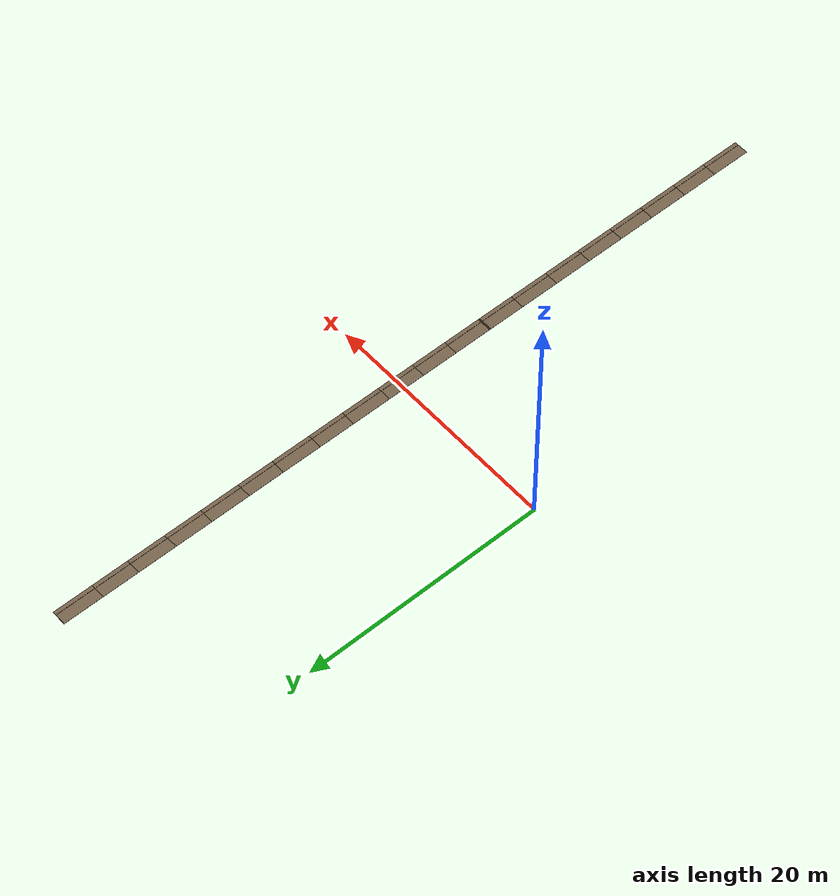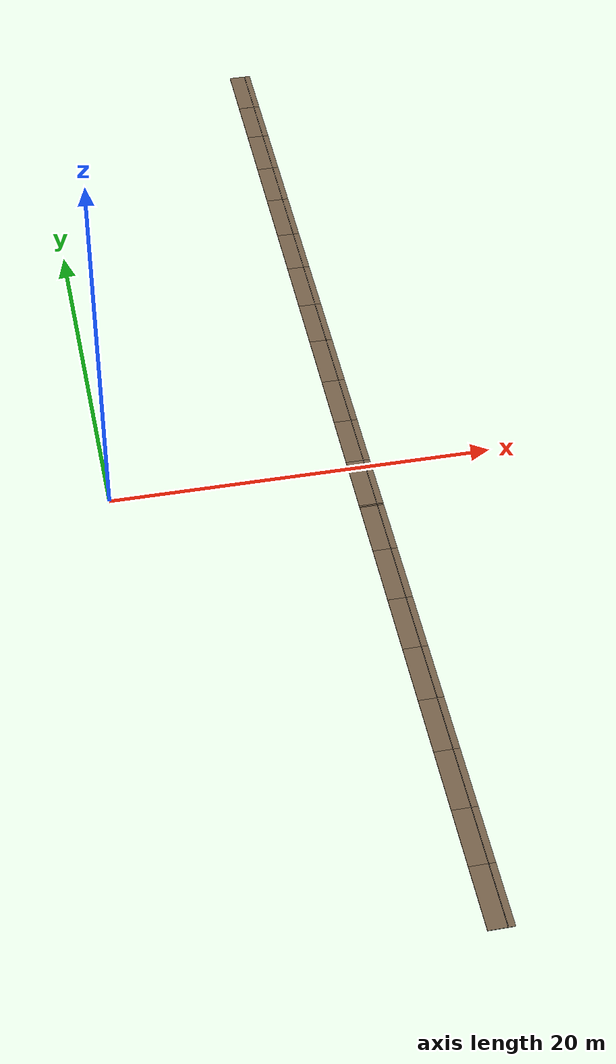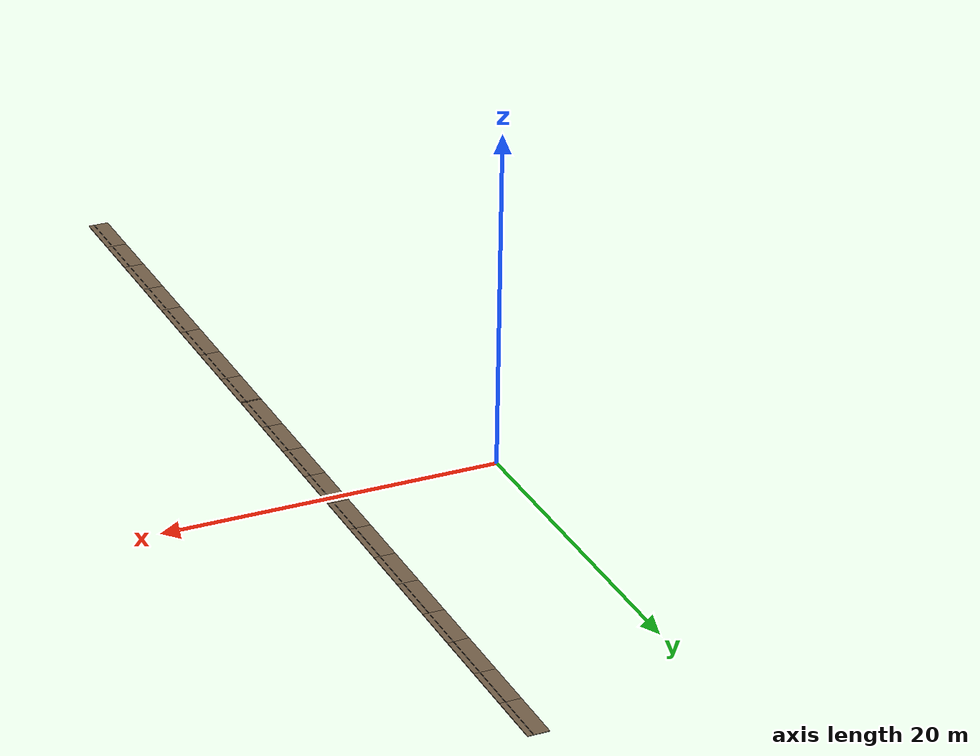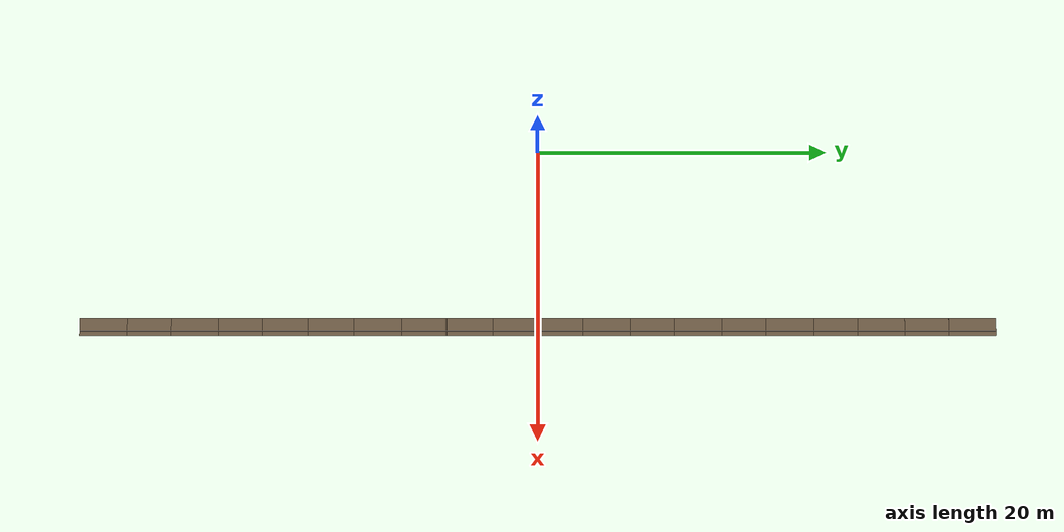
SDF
<sdf version="1.9">
 <world name="orchard_10x41">
  <model name="understory_r8">
   <static>true</static>
   <link name="link">
    <visual name="soil_1">
     <pose>12.250 -29.450 3.502 -0.0000 0.0000 0.0000</pose>
     <geometry><box><size>1.2000 3.2240 0.0300</size></box></geometry>
     <material>
      <ambient>0.400 0.330 0.250 1</ambient>
      <diffuse>0.440 0.363 0.275 1</diffuse>
      <specular>0.120 0.099 0.075 1</specular>
     </material>
     <plugin filename="gz-sim-label-system" name="gz::sim::systems::Label"><label>66</label></plugin>
    </visual>
    <visual name="soil_2">
     <pose>12.250 -26.350 3.502 0.0002 0.0000 0.0000</pose>
     <geometry><box><size>1.2000 3.2240 0.0300</size></box></geometry>
     <material>
      <ambient>0.400 0.330 0.250 1</ambient>
      <diffuse>0.440 0.363 0.275 1</diffuse>
      <specular>0.120 0.099 0.075 1</specular>
     </material>
     <plugin filename="gz-sim-label-system" name="gz::sim::systems::Label"><label>66</label></plugin>
    </visual>
    <visual name="soil_3">
     <pose>12.250 -23.250 3.503 0.0002 0.0000 0.0000</pose>
     <geometry><box><size>1.2000 3.2240 0.0300</size></box></geometry>
     <material>
      <ambient>0.400 0.330 0.250 1</ambient>
      <diffuse>0.440 0.363 0.275 1</diffuse>
      <specular>0.120 0.099 0.075 1</specular>
     </material>
     <plugin filename="gz-sim-label-system" name="gz::sim::systems::Label"><label>66</label></plugin>
    </visual>
    <visual name="soil_4">
     <pose>12.250 -20.150 3.503 0.0001 0.0000 0.0000</pose>
     <geometry><box><size>1.2000 3.2240 0.0300</size></box></geometry>
     <material>
      <ambient>0.400 0.330 0.250 1</ambient>
      <diffuse>0.440 0.363 0.275 1</diffuse>
      <specular>0.120 0.099 0.075 1</specular>
     </material>
     <plugin filename="gz-sim-label-system" name="gz::sim::systems::Label"><label>66</label></plugin>
    </visual>
    <visual name="soil_5">
     <pose>12.250 -17.050 3.504 0.0003 0.0000 0.0000</pose>
     <geometry><box><size>1.2000 3.2240 0.0300</size></box></geometry>
     <material>
      <ambient>0.400 0.330 0.250 1</ambient>
      <diffuse>0.440 0.363 0.275 1</diffuse>
      <specular>0.120 0.099 0.075 1</specular>
     </material>
     <plugin filename="gz-sim-label-system" name="gz::sim::systems::Label"><label>66</label></plugin>
    </visual>
    <visual name="soil_6">
     <pose>12.250 -13.950 3.505 0.0003 0.0000 0.0000</pose>
     <geometry><box><size>1.2000 3.2240 0.0300</size></box></geometry>
     <material>
      <ambient>0.400 0.330 0.250 1</ambient>
      <diffuse>0.440 0.363 0.275 1</diffuse>
      <specular>0.120 0.099 0.075 1</specular>
     </material>
     <plugin filename="gz-sim-label-system" name="gz::sim::systems::Label"><label>66</label></plugin>
    </visual>
    <visual name="soil_7">
     <pose>12.250 -10.850 3.506 0.0001 0.0000 0.0000</pose>
     <geometry><box><size>1.2000 3.2240 0.0300</size></box></geometry>
     <material>
      <ambient>0.400 0.330 0.250 1</ambient>
      <diffuse>0.440 0.363 0.275 1</diffuse>
      <specular>0.120 0.099 0.075 1</specular>
     </material>
     <plugin filename="gz-sim-label-system" name="gz::sim::systems::Label"><label>66</label></plugin>
    </visual>
    <visual name="soil_8">
     <pose>12.250 -7.750 3.506 0.0002 0.0000 0.0000</pose>
     <geometry><box><size>1.2000 3.2240 0.0300</size></box></geometry>
     <material>
      <ambient>0.400 0.330 0.250 1</ambient>
      <diffuse>0.440 0.363 0.275 1</diffuse>
      <specular>0.120 0.099 0.075 1</specular>
     </material>
     <plugin filename="gz-sim-label-system" name="gz::sim::systems::Label"><label>66</label></plugin>
    </visual>
    <visual name="soil_9">
     <pose>12.250 -4.650 3.506 -0.0002 0.0000 0.0000</pose>
     <geometry><box><size>1.2000 3.2240 0.0300</size></box></geometry>
     <material>
      <ambient>0.400 0.330 0.250 1</ambient>
      <diffuse>0.440 0.363 0.275 1</diffuse>
      <specular>0.120 0.099 0.075 1</specular>
     </material>
     <plugin filename="gz-sim-label-system" name="gz::sim::systems::Label"><label>66</label></plugin>
    </visual>
    <visual name="soil_10">
     <pose>12.250 -1.550 3.505 -0.0003 0.0000 0.0000</pose>
     <geometry><box><size>1.2000 3.2240 0.0300</size></box></geometry>
     <material>
      <ambient>0.400 0.330 0.250 1</ambient>
      <diffuse>0.440 0.363 0.275 1</diffuse>
      <specular>0.120 0.099 0.075 1</specular>
     </material>
     <plugin filename="gz-sim-label-system" name="gz::sim::systems::Label"><label>66</label></plugin>
    </visual>
    <visual name="soil_11">
     <pose>12.250 1.550 3.505 0.0002 0.0000 0.0000</pose>
     <geometry><box><size>1.2000 3.2240 0.0300</size></box></geometry>
     <material>
      <ambient>0.400 0.330 0.250 1</ambient>
      <diffuse>0.440 0.363 0.275 1</diffuse>
      <specular>0.120 0.099 0.075 1</specular>
     </material>
     <plugin filename="gz-sim-label-system" name="gz::sim::systems::Label"><label>66</label></plugin>
    </visual>
    <visual name="soil_12">
     <pose>12.250 4.650 3.506 0.0003 0.0000 0.0000</pose>
     <geometry><box><size>1.2000 3.2240 0.0300</size></box></geometry>
     <material>
      <ambient>0.400 0.330 0.250 1</ambient>
      <diffuse>0.440 0.363 0.275 1</diffuse>
      <specular>0.120 0.099 0.075 1</specular>
     </material>
     <plugin filename="gz-sim-label-system" name="gz::sim::systems::Label"><label>66</label></plugin>
    </visual>
    <visual name="soil_13">
     <pose>12.250 7.750 3.507 0.0004 0.0000 0.0000</pose>
     <geometry><box><size>1.2000 3.2240 0.0300</size></box></geometry>
     <material>
      <ambient>0.400 0.330 0.250 1</ambient>
      <diffuse>0.440 0.363 0.275 1</diffuse>
      <specular>0.120 0.099 0.075 1</specular>
     </material>
     <plugin filename="gz-sim-label-system" name="gz::sim::systems::Label"><label>66</label></plugin>
    </visual>
    <visual name="soil_14">
     <pose>12.250 10.850 3.508 0.0002 0.0000 0.0000</pose>
     <geometry><box><size>1.2000 3.2240 0.0300</size></box></geometry>
     <material>
      <ambient>0.400 0.330 0.250 1</ambient>
      <diffuse>0.440 0.363 0.275 1</diffuse>
      <specular>0.120 0.099 0.075 1</specular>
     </material>
     <plugin filename="gz-sim-label-system" name="gz::sim::systems::Label"><label>66</label></plugin>
    </visual>
    <visual name="soil_15">
     <pose>12.250 13.950 3.508 0.0000 0.0000 0.0000</pose>
     <geometry><box><size>1.2000 3.2240 0.0300</size></box></geometry>
     <material>
      <ambient>0.400 0.330 0.250 1</ambient>
      <diffuse>0.440 0.363 0.275 1</diffuse>
      <specular>0.120 0.099 0.075 1</specular>
     </material>
     <plugin filename="gz-sim-label-system" name="gz::sim::systems::Label"><label>66</label></plugin>
    </visual>
    <visual name="soil_16">
     <pose>12.250 17.050 3.508 -0.0005 0.0000 0.0000</pose>
     <geometry><box><size>1.2000 3.2240 0.0300</size></box></geometry>
     <material>
      <ambient>0.400 0.330 0.250 1</ambient>
      <diffuse>0.440 0.363 0.275 1</diffuse>
      <specular>0.120 0.099 0.075 1</specular>
     </material>
     <plugin filename="gz-sim-label-system" name="gz::sim::systems::Label"><label>66</label></plugin>
    </visual>
    <visual name="soil_17">
     <pose>12.250 20.150 3.507 -0.0001 0.0000 0.0000</pose>
     <geometry><box><size>1.2000 3.2240 0.0300</size></box></geometry>
     <material>
      <ambient>0.400 0.330 0.250 1</ambient>
      <diffuse>0.440 0.363 0.275 1</diffuse>
      <specular>0.120 0.099 0.075 1</specular>
     </material>
     <plugin filename="gz-sim-label-system" name="gz::sim::systems::Label"><label>66</label></plugin>
    </visual>
    <visual name="soil_18">
     <pose>12.250 23.250 3.507 0.0001 0.0000 0.0000</pose>
     <geometry><box><size>1.2000 3.2240 0.0300</size></box></geometry>
     <material>
      <ambient>0.400 0.330 0.250 1</ambient>
      <diffuse>0.440 0.363 0.275 1</diffuse>
      <specular>0.120 0.099 0.075 1</specular>
     </material>
     <plugin filename="gz-sim-label-system" name="gz::sim::systems::Label"><label>66</label></plugin>
    </visual>
    <visual name="soil_19">
     <pose>12.250 26.350 3.507 0.0000 0.0000 0.0000</pose>
     <geometry><box><size>1.2000 3.2240 0.0300</size></box></geometry>
     <material>
      <ambient>0.400 0.330 0.250 1</ambient>
      <diffuse>0.440 0.363 0.275 1</diffuse>
      <specular>0.120 0.099 0.075 1</specular>
     </material>
     <plugin filename="gz-sim-label-system" name="gz::sim::systems::Label"><label>66</label></plugin>
    </visual>
    <visual name="soil_20">
     <pose>12.250 29.450 3.507 -0.0004 0.0000 0.0000</pose>
     <geometry><box><size>1.2000 3.2240 0.0300</size></box></geometry>
     <material>
      <ambient>0.400 0.330 0.250 1</ambient>
      <diffuse>0.440 0.363 0.275 1</diffuse>
      <specular>0.120 0.099 0.075 1</specular>
     </material>
     <plugin filename="gz-sim-label-system" name="gz::sim::systems::Label"><label>66</label></plugin>
    </visual>
    <visual name="drip_21">
     <pose>12.530 -29.450 3.532 1.5708 0.0000 0.0000</pose>
     <geometry><cylinder><radius>0.0110</radius><length>3.1620</length></cylinder></geometry>
     <material>
      <ambient>0.100 0.100 0.110 1</ambient>
      <diffuse>0.110 0.110 0.121 1</diffuse>
      <specular>0.030 0.030 0.033 1</specular>
     </material>
     <plugin filename="gz-sim-label-system" name="gz::sim::systems::Label"><label>67</label></plugin>
    </visual>
    <visual name="drip_22">
     <pose>12.530 -26.350 3.532 1.5710 0.0000 0.0000</pose>
     <geometry><cylinder><radius>0.0110</radius><length>3.1620</length></cylinder></geometry>
     <material>
      <ambient>0.100 0.100 0.110 1</ambient>
      <diffuse>0.110 0.110 0.121 1</diffuse>
      <specular>0.030 0.030 0.033 1</specular>
     </material>
     <plugin filename="gz-sim-label-system" name="gz::sim::systems::Label"><label>67</label></plugin>
    </visual>
    <visual name="drip_23">
     <pose>12.530 -23.250 3.533 1.5710 0.0000 0.0000</pose>
     <geometry><cylinder><radius>0.0110</radius><length>3.1620</length></cylinder></geometry>
     <material>
      <ambient>0.100 0.100 0.110 1</ambient>
      <diffuse>0.110 0.110 0.121 1</diffuse>
      <specular>0.030 0.030 0.033 1</specular>
     </material>
     <plugin filename="gz-sim-label-system" name="gz::sim::systems::Label"><label>67</label></plugin>
    </visual>
    <visual name="drip_24">
     <pose>12.530 -20.150 3.533 1.5709 0.0000 0.0000</pose>
     <geometry><cylinder><radius>0.0110</radius><length>3.1620</length></cylinder></geometry>
     <material>
      <ambient>0.100 0.100 0.110 1</ambient>
      <diffuse>0.110 0.110 0.121 1</diffuse>
      <specular>0.030 0.030 0.033 1</specular>
     </material>
     <plugin filename="gz-sim-label-system" name="gz::sim::systems::Label"><label>67</label></plugin>
    </visual>
    <visual name="drip_25">
     <pose>12.530 -17.050 3.534 1.5711 0.0000 0.0000</pose>
     <geometry><cylinder><radius>0.0110</radius><length>3.1620</length></cylinder></geometry>
     <material>
      <ambient>0.100 0.100 0.110 1</ambient>
      <diffuse>0.110 0.110 0.121 1</diffuse>
      <specular>0.030 0.030 0.033 1</specular>
     </material>
     <plugin filename="gz-sim-label-system" name="gz::sim::systems::Label"><label>67</label></plugin>
    </visual>
    <visual name="drip_26">
     <pose>12.530 -13.950 3.535 1.5711 0.0000 0.0000</pose>
     <geometry><cylinder><radius>0.0110</radius><length>3.1620</length></cylinder></geometry>
     <material>
      <ambient>0.100 0.100 0.110 1</ambient>
      <diffuse>0.110 0.110 0.121 1</diffuse>
      <specular>0.030 0.030 0.033 1</specular>
     </material>
     <plugin filename="gz-sim-label-system" name="gz::sim::systems::Label"><label>67</label></plugin>
    </visual>
    <visual name="drip_27">
     <pose>12.530 -10.850 3.536 1.5709 0.0000 0.0000</pose>
     <geometry><cylinder><radius>0.0110</radius><length>3.1620</length></cylinder></geometry>
     <material>
      <ambient>0.100 0.100 0.110 1</ambient>
      <diffuse>0.110 0.110 0.121 1</diffuse>
      <specular>0.030 0.030 0.033 1</specular>
     </material>
     <plugin filename="gz-sim-label-system" name="gz::sim::systems::Label"><label>67</label></plugin>
    </visual>
    <visual name="drip_28">
     <pose>12.530 -7.750 3.536 1.5710 0.0000 0.0000</pose>
     <geometry><cylinder><radius>0.0110</radius><length>3.1620</length></cylinder></geometry>
     <material>
      <ambient>0.100 0.100 0.110 1</ambient>
      <diffuse>0.110 0.110 0.121 1</diffuse>
      <specular>0.030 0.030 0.033 1</specular>
     </material>
     <plugin filename="gz-sim-label-system" name="gz::sim::systems::Label"><label>67</label></plugin>
    </visual>
    <visual name="drip_29">
     <pose>12.530 -4.650 3.536 1.5706 0.0000 0.0000</pose>
     <geometry><cylinder><radius>0.0110</radius><length>3.1620</length></cylinder></geometry>
     <material>
      <ambient>0.100 0.100 0.110 1</ambient>
      <diffuse>0.110 0.110 0.121 1</diffuse>
      <specular>0.030 0.030 0.033 1</specular>
     </material>
     <plugin filename="gz-sim-label-system" name="gz::sim::systems::Label"><label>67</label></plugin>
    </visual>
    <visual name="drip_30">
     <pose>12.530 -1.550 3.535 1.5705 0.0000 0.0000</pose>
     <geometry><cylinder><radius>0.0110</radius><length>3.1620</length></cylinder></geometry>
     <material>
      <ambient>0.100 0.100 0.110 1</ambient>
      <diffuse>0.110 0.110 0.121 1</diffuse>
      <specular>0.030 0.030 0.033 1</specular>
     </material>
     <plugin filename="gz-sim-label-system" name="gz::sim::systems::Label"><label>67</label></plugin>
    </visual>
    <visual name="drip_31">
     <pose>12.530 1.550 3.535 1.5710 0.0000 0.0000</pose>
     <geometry><cylinder><radius>0.0110</radius><length>3.1620</length></cylinder></geometry>
     <material>
      <ambient>0.100 0.100 0.110 1</ambient>
      <diffuse>0.110 0.110 0.121 1</diffuse>
      <specular>0.030 0.030 0.033 1</specular>
     </material>
     <plugin filename="gz-sim-label-system" name="gz::sim::systems::Label"><label>67</label></plugin>
    </visual>
    <visual name="drip_32">
     <pose>12.530 4.650 3.536 1.5711 0.0000 0.0000</pose>
     <geometry><cylinder><radius>0.0110</radius><length>3.1620</length></cylinder></geometry>
     <material>
      <ambient>0.100 0.100 0.110 1</ambient>
      <diffuse>0.110 0.110 0.121 1</diffuse>
      <specular>0.030 0.030 0.033 1</specular>
     </material>
     <plugin filename="gz-sim-label-system" name="gz::sim::systems::Label"><label>67</label></plugin>
    </visual>
    <visual name="drip_33">
     <pose>12.530 7.750 3.537 1.5712 0.0000 0.0000</pose>
     <geometry><cylinder><radius>0.0110</radius><length>3.1620</length></cylinder></geometry>
     <material>
      <ambient>0.100 0.100 0.110 1</ambient>
      <diffuse>0.110 0.110 0.121 1</diffuse>
      <specular>0.030 0.030 0.033 1</specular>
     </material>
     <plugin filename="gz-sim-label-system" name="gz::sim::systems::Label"><label>67</label></plugin>
    </visual>
    <visual name="drip_34">
     <pose>12.530 10.850 3.538 1.5710 0.0000 0.0000</pose>
     <geometry><cylinder><radius>0.0110</radius><length>3.1620</length></cylinder></geometry>
     <material>
      <ambient>0.100 0.100 0.110 1</ambient>
      <diffuse>0.110 0.110 0.121 1</diffuse>
      <specular>0.030 0.030 0.033 1</specular>
     </material>
     <plugin filename="gz-sim-label-system" name="gz::sim::systems::Label"><label>67</label></plugin>
    </visual>
    <visual name="drip_35">
     <pose>12.530 13.950 3.538 1.5708 0.0000 0.0000</pose>
     <geometry><cylinder><radius>0.0110</radius><length>3.1620</length></cylinder></geometry>
     <material>
      <ambient>0.100 0.100 0.110 1</ambient>
      <diffuse>0.110 0.110 0.121 1</diffuse>
      <specular>0.030 0.030 0.033 1</specular>
     </material>
     <plugin filename="gz-sim-label-system" name="gz::sim::systems::Label"><label>67</label></plugin>
    </visual>
    <visual name="drip_36">
     <pose>12.530 17.050 3.538 1.5703 0.0000 0.0000</pose>
     <geometry><cylinder><radius>0.0110</radius><length>3.1620</length></cylinder></geometry>
     <material>
      <ambient>0.100 0.100 0.110 1</ambient>
      <diffuse>0.110 0.110 0.121 1</diffuse>
      <specular>0.030 0.030 0.033 1</specular>
     </material>
     <plugin filename="gz-sim-label-system" name="gz::sim::systems::Label"><label>67</label></plugin>
    </visual>
    <visual name="drip_37">
     <pose>12.530 20.150 3.537 1.5707 0.0000 0.0000</pose>
     <geometry><cylinder><radius>0.0110</radius><length>3.1620</length></cylinder></geometry>
     <material>
      <ambient>0.100 0.100 0.110 1</ambient>
      <diffuse>0.110 0.110 0.121 1</diffuse>
      <specular>0.030 0.030 0.033 1</specular>
     </material>
     <plugin filename="gz-sim-label-system" name="gz::sim::systems::Label"><label>67</label></plugin>
    </visual>
    <visual name="drip_38">
     <pose>12.530 23.250 3.537 1.5709 0.0000 0.0000</pose>
     <geometry><cylinder><radius>0.0110</radius><length>3.1620</length></cylinder></geometry>
     <material>
      <ambient>0.100 0.100 0.110 1</ambient>
      <diffuse>0.110 0.110 0.121 1</diffuse>
      <specular>0.030 0.030 0.033 1</specular>
     </material>
     <plugin filename="gz-sim-label-system" name="gz::sim::systems::Label"><label>67</label></plugin>
    </visual>
    <visual name="drip_39">
     <pose>12.530 26.350 3.537 1.5708 0.0000 0.0000</pose>
     <geometry><cylinder><radius>0.0110</radius><length>3.1620</length></cylinder></geometry>
     <material>
      <ambient>0.100 0.100 0.110 1</ambient>
      <diffuse>0.110 0.110 0.121 1</diffuse>
      <specular>0.030 0.030 0.033 1</specular>
     </material>
     <plugin filename="gz-sim-label-system" name="gz::sim::systems::Label"><label>67</label></plugin>
    </visual>
    <visual name="drip_40">
     <pose>12.530 29.450 3.537 1.5704 0.0000 0.0000</pose>
     <geometry><cylinder><radius>0.0110</radius><length>3.1620</length></cylinder></geometry>
     <material>
      <ambient>0.100 0.100 0.110 1</ambient>
      <diffuse>0.110 0.110 0.121 1</diffuse>
      <specular>0.030 0.030 0.033 1</specular>
     </material>
     <plugin filename="gz-sim-label-system" name="gz::sim::systems::Label"><label>67</label></plugin>
    </visual>
   </link>
  </model>
 </world>
</sdf>
